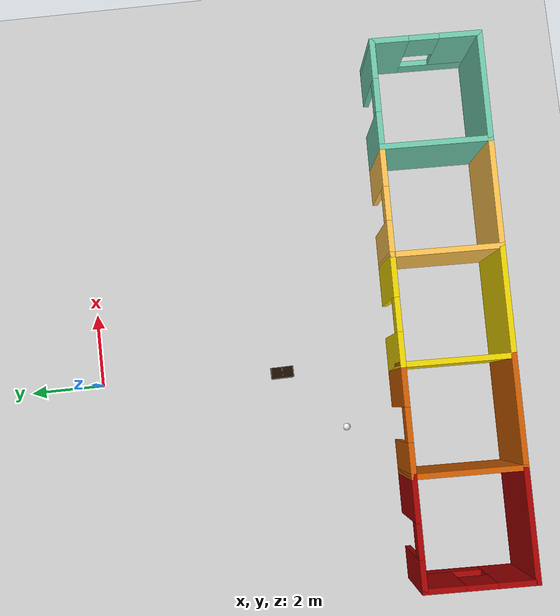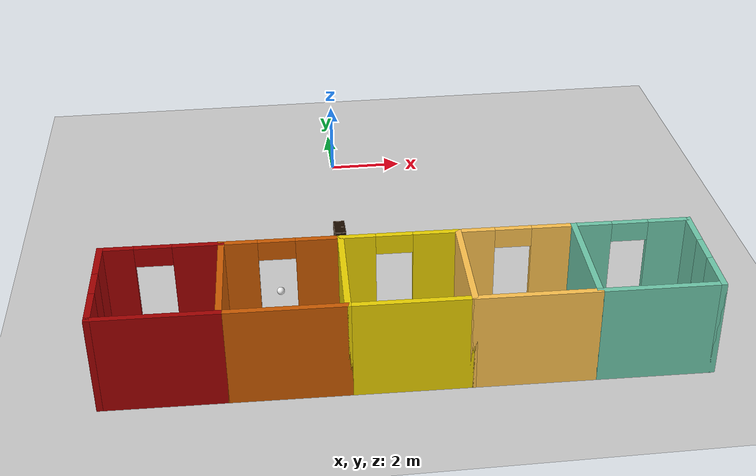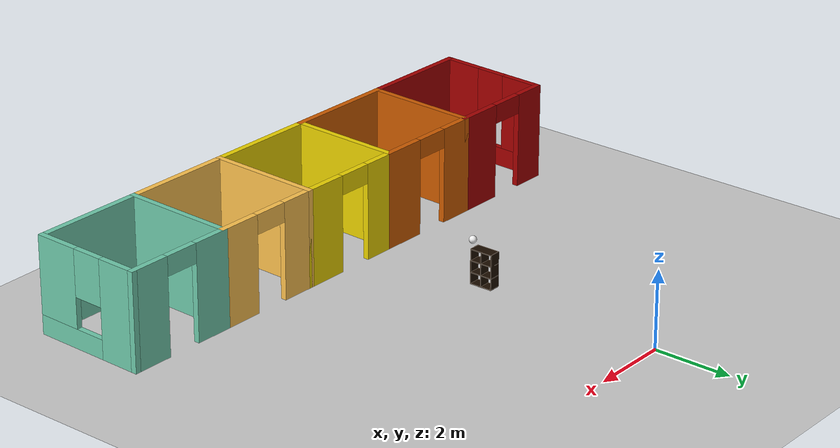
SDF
<sdf version="1.6">
 <world name="default">
  <model name="ground_plane">
   <static>1</static>
   <link name="link">
    <collision name="collision">
     <geometry><plane><normal>0 0 1</normal><size>100 100</size></plane></geometry>
     <surface><friction><ode><mu>100</mu><mu2>50</mu2></ode></friction></surface>
    </collision>
    <visual name="visual">
     <cast_shadows>0</cast_shadows>
     <geometry><plane><normal>0 0 1</normal><size>100 100</size></plane></geometry>
     <material>
      <script><uri>file://media/materials/scripts/gazebo.material</uri><name>Gazebo/Grey</name></script>
     </material>
    </visual>
   </link>
  </model>
  <model name="office_4_1">
   <pose>1.03568 -10.1309 0 0 -0 3.11919</pose>
   <link name="Wall_0">
    <collision name="Wall_0_Collision">
     <geometry><box><size>3 0.15 2.5</size></box></geometry>
     <pose>0 0 1.25 0 -0 0</pose>
    </collision>
    <visual name="Wall_0_Visual">
     <pose>0 0 1.25 0 -0 0</pose>
     <geometry><box><size>3 0.15 2.5</size></box></geometry>
     <material>
      <script><uri>file://media/materials/scripts/gazebo.material</uri><name>Gazebo/Grey</name></script>
      <ambient>0.435294 0.796078 0.67451 1</ambient>
     </material>
     <meta><layer>0</layer></meta>
    </visual>
    <pose>-5.7 0.8025 0 0 -0 0</pose>
   </link>
   <link name="Wall_1">
    <collision name="Wall_1_Collision">
     <geometry><box><size>3 0.15 2.5</size></box></geometry>
     <pose>0 0 1.25 0 -0 0</pose>
    </collision>
    <visual name="Wall_1_Visual">
     <pose>0 0 1.25 0 -0 0</pose>
     <geometry><box><size>3 0.15 2.5</size></box></geometry>
     <material>
      <script><uri>file://media/materials/scripts/gazebo.material</uri><name>Gazebo/Grey</name></script>
      <ambient>0.435294 0.796078 0.67451 1</ambient>
     </material>
     <meta><layer>0</layer></meta>
    </visual>
    <pose>-4.275 -0.6225 0 0 -0 -1.5708</pose>
   </link>
   <link name="Wall_10">
    <pose>5.7 -2.0475 0 0 -0 3.14159</pose>
    <visual name="Wall_10_Visual_0">
     <pose>-1.06469 0 1.25 0 -0 0</pose>
     <geometry><box><size>0.870623 0.15 2.5</size></box></geometry>
     <material>
      <script><uri>file://media/materials/scripts/gazebo.material</uri><name>Gazebo/Grey</name></script>
      <ambient>0.643137 0 0 1</ambient>
     </material>
     <meta><layer>0</layer></meta>
    </visual>
    <collision name="Wall_10_Collision_0">
     <geometry><box><size>0.870623 0.15 2.5</size></box></geometry>
     <pose>-1.06469 0 1.25 0 -0 0</pose>
    </collision>
    <visual name="Wall_10_Visual_1">
     <pose>0.885312 0 1.25 0 -0 0</pose>
     <geometry><box><size>1.22938 0.15 2.5</size></box></geometry>
     <material>
      <script><uri>file://media/materials/scripts/gazebo.material</uri><name>Gazebo/Grey</name></script>
      <ambient>0.643137 0 0 1</ambient>
     </material>
     <meta><layer>0</layer></meta>
    </visual>
    <collision name="Wall_10_Collision_1">
     <geometry><box><size>1.22938 0.15 2.5</size></box></geometry>
     <pose>0.885312 0 1.25 0 -0 0</pose>
    </collision>
    <visual name="Wall_10_Visual_2">
     <pose>-0.179377 0 2.25 0 -0 0</pose>
     <geometry><box><size>0.9 0.15 0.5</size></box></geometry>
     <material>
      <script><uri>file://media/materials/scripts/gazebo.material</uri><name>Gazebo/Grey</name></script>
      <ambient>0.643137 0 0 1</ambient>
     </material>
     <meta><layer>0</layer></meta>
    </visual>
    <collision name="Wall_10_Collision_2">
     <geometry><box><size>0.9 0.15 0.5</size></box></geometry>
     <pose>-0.179377 0 2.25 0 -0 0</pose>
    </collision>
   </link>
   <link name="Wall_12">
    <pose>0 -2.0475 0 0 -0 0</pose>
    <visual name="Wall_12_Visual_0">
     <pose>-0.909766 0 1.25 0 -0 0</pose>
     <geometry><box><size>1.18047 0.15 2.5</size></box></geometry>
     <material>
      <script><uri>file://media/materials/scripts/gazebo.material</uri><name>Gazebo/Grey</name></script>
      <ambient>0.929412 0.831373 0 1</ambient>
     </material>
     <meta><layer>0</layer></meta>
    </visual>
    <collision name="Wall_12_Collision_0">
     <geometry><box><size>1.18047 0.15 2.5</size></box></geometry>
     <pose>-0.909766 0 1.25 0 -0 0</pose>
    </collision>
    <visual name="Wall_12_Visual_1">
     <pose>1.04023 0 1.25 0 -0 0</pose>
     <geometry><box><size>0.919531 0.15 2.5</size></box></geometry>
     <material>
      <script><uri>file://media/materials/scripts/gazebo.material</uri><name>Gazebo/Grey</name></script>
      <ambient>0.929412 0.831373 0 1</ambient>
     </material>
     <meta><layer>0</layer></meta>
    </visual>
    <collision name="Wall_12_Collision_1">
     <geometry><box><size>0.919531 0.15 2.5</size></box></geometry>
     <pose>1.04023 0 1.25 0 -0 0</pose>
    </collision>
    <visual name="Wall_12_Visual_2">
     <pose>0.130469 0 2.25 0 -0 0</pose>
     <geometry><box><size>0.9 0.15 0.5</size></box></geometry>
     <material>
      <script><uri>file://media/materials/scripts/gazebo.material</uri><name>Gazebo/Grey</name></script>
      <ambient>0.929412 0.831373 0 1</ambient>
     </material>
     <meta><layer>0</layer></meta>
    </visual>
    <collision name="Wall_12_Collision_2">
     <geometry><box><size>0.9 0.15 0.5</size></box></geometry>
     <pose>0.130469 0 2.25 0 -0 0</pose>
    </collision>
   </link>
   <link name="Wall_14">
    <collision name="Wall_14_Collision">
     <geometry><box><size>3 0.15 2.5</size></box></geometry>
     <pose>0 0 1.25 0 -0 0</pose>
    </collision>
    <visual name="Wall_14_Visual">
     <pose>0 0 1.25 0 -0 0</pose>
     <geometry><box><size>3 0.15 2.5</size></box></geometry>
     <material>
      <script><uri>file://media/materials/scripts/gazebo.material</uri><name>Gazebo/Grey</name></script>
      <ambient>0.807843 0.360784 0 1</ambient>
     </material>
     <meta><layer>0</layer></meta>
    </visual>
    <pose>2.85 0.8025 0 0 -0 0</pose>
   </link>
   <link name="Wall_16">
    <collision name="Wall_16_Collision">
     <geometry><box><size>3 0.15 2.5</size></box></geometry>
     <pose>0 0 1.25 0 -0 0</pose>
    </collision>
    <visual name="Wall_16_Visual">
     <pose>0 0 1.25 0 -0 0</pose>
     <geometry><box><size>3 0.15 2.5</size></box></geometry>
     <material>
      <script><uri>file://media/materials/scripts/gazebo.material</uri><name>Gazebo/Grey</name></script>
      <ambient>1 0.764706 0.305882 1</ambient>
     </material>
     <meta><layer>0</layer></meta>
    </visual>
    <pose>-2.85 0.8025 0 0 -0 0</pose>
   </link>
   <link name="Wall_18">
    <pose>-5.7 -2.0475 0 0 -0 3.14159</pose>
    <visual name="Wall_18_Visual_0">
     <pose>-0.992968 0 1.25 0 -0 0</pose>
     <geometry><box><size>1.01406 0.15 2.5</size></box></geometry>
     <material>
      <script><uri>file://media/materials/scripts/gazebo.material</uri><name>Gazebo/Grey</name></script>
      <ambient>0.435294 0.796078 0.67451 1</ambient>
     </material>
     <meta><layer>0</layer></meta>
    </visual>
    <collision name="Wall_18_Collision_0">
     <geometry><box><size>1.01406 0.15 2.5</size></box></geometry>
     <pose>-0.992968 0 1.25 0 -0 0</pose>
    </collision>
    <visual name="Wall_18_Visual_1">
     <pose>0.957032 0 1.25 0 -0 0</pose>
     <geometry><box><size>1.08594 0.15 2.5</size></box></geometry>
     <material>
      <script><uri>file://media/materials/scripts/gazebo.material</uri><name>Gazebo/Grey</name></script>
      <ambient>0.435294 0.796078 0.67451 1</ambient>
     </material>
     <meta><layer>0</layer></meta>
    </visual>
    <collision name="Wall_18_Collision_1">
     <geometry><box><size>1.08594 0.15 2.5</size></box></geometry>
     <pose>0.957032 0 1.25 0 -0 0</pose>
    </collision>
    <visual name="Wall_18_Visual_2">
     <pose>-0.035935 0 2.25 0 -0 0</pose>
     <geometry><box><size>0.9 0.15 0.5</size></box></geometry>
     <material>
      <script><uri>file://media/materials/scripts/gazebo.material</uri><name>Gazebo/Grey</name></script>
      <ambient>0.435294 0.796078 0.67451 1</ambient>
     </material>
     <meta><layer>0</layer></meta>
    </visual>
    <collision name="Wall_18_Collision_2">
     <geometry><box><size>0.9 0.15 0.5</size></box></geometry>
     <pose>-0.035935 0 2.25 0 -0 0</pose>
    </collision>
   </link>
   <link name="Wall_19">
    <pose>-7.125 -0.6225 0 0 -0 1.5708</pose>
    <visual name="Wall_19_Visual_0">
     <pose>-0.974081 0 1.25 0 -0 0</pose>
     <geometry><box><size>1.05184 0.15 2.5</size></box></geometry>
     <material>
      <script><uri>file://media/materials/scripts/gazebo.material</uri><name>Gazebo/Grey</name></script>
      <ambient>0.435294 0.796078 0.67451 1</ambient>
     </material>
     <meta><layer>0</layer></meta>
    </visual>
    <collision name="Wall_19_Collision_0">
     <geometry><box><size>1.05184 0.15 2.5</size></box></geometry>
     <pose>-0.974081 0 1.25 0 -0 0</pose>
    </collision>
    <visual name="Wall_19_Visual_1">
     <pose>0.525919 0 0.25 0 -0 0</pose>
     <geometry><box><size>1.94816 0.15 0.5</size></box></geometry>
     <material>
      <script><uri>file://media/materials/scripts/gazebo.material</uri><name>Gazebo/Grey</name></script>
      <ambient>0.435294 0.796078 0.67451 1</ambient>
     </material>
     <meta><layer>0</layer></meta>
    </visual>
    <collision name="Wall_19_Collision_1">
     <geometry><box><size>1.94816 0.15 0.5</size></box></geometry>
     <pose>0.525919 0 0.25 0 -0 0</pose>
    </collision>
    <visual name="Wall_19_Visual_2">
     <pose>0.925919 0 1.5 0 -0 0</pose>
     <geometry><box><size>1.14816 0.15 2</size></box></geometry>
     <material>
      <script><uri>file://media/materials/scripts/gazebo.material</uri><name>Gazebo/Grey</name></script>
      <ambient>0.435294 0.796078 0.67451 1</ambient>
     </material>
     <meta><layer>0</layer></meta>
    </visual>
    <collision name="Wall_19_Collision_2">
     <geometry><box><size>1.14816 0.15 2</size></box></geometry>
     <pose>0.925919 0 1.5 0 -0 0</pose>
    </collision>
    <visual name="Wall_19_Visual_3">
     <pose>-0.048161 0 1.9 0 -0 0</pose>
     <geometry><box><size>0.8 0.15 1.2</size></box></geometry>
     <material>
      <script><uri>file://media/materials/scripts/gazebo.material</uri><name>Gazebo/Grey</name></script>
      <ambient>0.435294 0.796078 0.67451 1</ambient>
     </material>
     <meta><layer>0</layer></meta>
    </visual>
    <collision name="Wall_19_Collision_3">
     <geometry><box><size>0.8 0.15 1.2</size></box></geometry>
     <pose>-0.048161 0 1.9 0 -0 0</pose>
    </collision>
   </link>
   <link name="Wall_2">
    <pose>-2.85 -2.0475 0 0 -0 0</pose>
    <visual name="Wall_2_Visual_0">
     <pose>-0.937201 0 1.25 0 -0 0</pose>
     <geometry><box><size>1.1256 0.15 2.5</size></box></geometry>
     <material>
      <script><uri>file://media/materials/scripts/gazebo.material</uri><name>Gazebo/Grey</name></script>
      <ambient>1 0.764706 0.305882 1</ambient>
     </material>
     <meta><layer>0</layer></meta>
    </visual>
    <collision name="Wall_2_Collision_0">
     <geometry><box><size>1.1256 0.15 2.5</size></box></geometry>
     <pose>-0.937201 0 1.25 0 -0 0</pose>
    </collision>
    <visual name="Wall_2_Visual_1">
     <pose>1.0128 0 1.25 0 -0 0</pose>
     <geometry><box><size>0.974402 0.15 2.5</size></box></geometry>
     <material>
      <script><uri>file://media/materials/scripts/gazebo.material</uri><name>Gazebo/Grey</name></script>
      <ambient>1 0.764706 0.305882 1</ambient>
     </material>
     <meta><layer>0</layer></meta>
    </visual>
    <collision name="Wall_2_Collision_1">
     <geometry><box><size>0.974402 0.15 2.5</size></box></geometry>
     <pose>1.0128 0 1.25 0 -0 0</pose>
    </collision>
    <visual name="Wall_2_Visual_2">
     <pose>0.075598 0 2.25 0 -0 0</pose>
     <geometry><box><size>0.9 0.15 0.5</size></box></geometry>
     <material>
      <script><uri>file://media/materials/scripts/gazebo.material</uri><name>Gazebo/Grey</name></script>
      <ambient>1 0.764706 0.305882 1</ambient>
     </material>
     <meta><layer>0</layer></meta>
    </visual>
    <collision name="Wall_2_Collision_2">
     <geometry><box><size>0.9 0.15 0.5</size></box></geometry>
     <pose>0.075598 0 2.25 0 -0 0</pose>
    </collision>
   </link>
   <link name="Wall_3">
    <collision name="Wall_3_Collision">
     <geometry><box><size>3 0.15 2.5</size></box></geometry>
     <pose>0 0 1.25 0 -0 0</pose>
    </collision>
    <visual name="Wall_3_Visual">
     <pose>0 0 1.25 0 -0 0</pose>
     <geometry><box><size>3 0.15 2.5</size></box></geometry>
     <material>
      <script><uri>file://media/materials/scripts/gazebo.material</uri><name>Gazebo/Grey</name></script>
      <ambient>1 0.764706 0.305882 1</ambient>
     </material>
     <meta><layer>0</layer></meta>
    </visual>
    <pose>-1.425 -0.6225 0 0 -0 1.5708</pose>
   </link>
   <link name="Wall_4">
    <collision name="Wall_4_Collision">
     <geometry><box><size>3 0.15 2.5</size></box></geometry>
     <pose>0 0 1.25 0 -0 0</pose>
    </collision>
    <visual name="Wall_4_Visual">
     <pose>0 0 1.25 0 -0 0</pose>
     <geometry><box><size>3 0.15 2.5</size></box></geometry>
     <material>
      <script><uri>file://media/materials/scripts/gazebo.material</uri><name>Gazebo/Grey</name></script>
      <ambient>0.929412 0.831373 0 1</ambient>
     </material>
     <meta><layer>0</layer></meta>
    </visual>
    <pose>0 0.8025 0 0 -0 0</pose>
   </link>
   <link name="Wall_5">
    <collision name="Wall_5_Collision">
     <geometry><box><size>3 0.15 2.5</size></box></geometry>
     <pose>0 0 1.25 0 -0 0</pose>
    </collision>
    <visual name="Wall_5_Visual">
     <pose>0 0 1.25 0 -0 0</pose>
     <geometry><box><size>3 0.15 2.5</size></box></geometry>
     <material>
      <script><uri>file://media/materials/scripts/gazebo.material</uri><name>Gazebo/Grey</name></script>
      <ambient>0.929412 0.831373 0 1</ambient>
     </material>
     <meta><layer>0</layer></meta>
    </visual>
    <pose>1.425 -0.6225 0 0 -0 -1.5708</pose>
   </link>
   <link name="Wall_6">
    <pose>2.85 -2.0475 0 0 -0 0</pose>
    <visual name="Wall_6_Visual_0">
     <pose>-0.920352 0 1.25 0 -0 0</pose>
     <geometry><box><size>1.1593 0.15 2.5</size></box></geometry>
     <material>
      <script><uri>file://media/materials/scripts/gazebo.material</uri><name>Gazebo/Grey</name></script>
      <ambient>0.807843 0.360784 0 1</ambient>
     </material>
     <meta><layer>0</layer></meta>
    </visual>
    <collision name="Wall_6_Collision_0">
     <geometry><box><size>1.1593 0.15 2.5</size></box></geometry>
     <pose>-0.920352 0 1.25 0 -0 0</pose>
    </collision>
    <visual name="Wall_6_Visual_1">
     <pose>1.02965 0 1.25 0 -0 0</pose>
     <geometry><box><size>0.940704 0.15 2.5</size></box></geometry>
     <material>
      <script><uri>file://media/materials/scripts/gazebo.material</uri><name>Gazebo/Grey</name></script>
      <ambient>0.807843 0.360784 0 1</ambient>
     </material>
     <meta><layer>0</layer></meta>
    </visual>
    <collision name="Wall_6_Collision_1">
     <geometry><box><size>0.940704 0.15 2.5</size></box></geometry>
     <pose>1.02965 0 1.25 0 -0 0</pose>
    </collision>
    <visual name="Wall_6_Visual_2">
     <pose>0.109296 0 2.25 0 -0 0</pose>
     <geometry><box><size>0.9 0.15 0.5</size></box></geometry>
     <material>
      <script><uri>file://media/materials/scripts/gazebo.material</uri><name>Gazebo/Grey</name></script>
      <ambient>0.807843 0.360784 0 1</ambient>
     </material>
     <meta><layer>0</layer></meta>
    </visual>
    <collision name="Wall_6_Collision_2">
     <geometry><box><size>0.9 0.15 0.5</size></box></geometry>
     <pose>0.109296 0 2.25 0 -0 0</pose>
    </collision>
   </link>
   <link name="Wall_7">
    <collision name="Wall_7_Collision">
     <geometry><box><size>3 0.15 2.5</size></box></geometry>
     <pose>0 0 1.25 0 -0 0</pose>
    </collision>
    <visual name="Wall_7_Visual">
     <pose>0 0 1.25 0 -0 0</pose>
     <geometry><box><size>3 0.15 2.5</size></box></geometry>
     <material>
      <script><uri>file://media/materials/scripts/gazebo.material</uri><name>Gazebo/Grey</name></script>
      <ambient>0.807843 0.360784 0 1</ambient>
     </material>
     <meta><layer>0</layer></meta>
    </visual>
    <pose>4.275 -0.6225 0 0 -0 1.5708</pose>
   </link>
   <link name="Wall_8">
    <collision name="Wall_8_Collision">
     <geometry><box><size>3 0.15 2.5</size></box></geometry>
     <pose>0 0 1.25 0 -0 0</pose>
    </collision>
    <visual name="Wall_8_Visual">
     <pose>0 0 1.25 0 -0 0</pose>
     <geometry><box><size>3 0.15 2.5</size></box></geometry>
     <material>
      <script><uri>file://media/materials/scripts/gazebo.material</uri><name>Gazebo/Grey</name></script>
      <ambient>0.643137 0 0 1</ambient>
     </material>
     <meta><layer>0</layer></meta>
    </visual>
    <pose>5.7 0.8025 0 0 -0 0</pose>
   </link>
   <link name="Wall_9">
    <pose>7.125 -0.6225 0 0 -0 -1.5708</pose>
    <visual name="Wall_9_Visual_0">
     <pose>-0.956337 0 1.25 0 -0 0</pose>
     <geometry><box><size>1.08733 0.15 2.5</size></box></geometry>
     <material>
      <script><uri>file://media/materials/scripts/gazebo.material</uri><name>Gazebo/Grey</name></script>
      <ambient>0.643137 0 0 1</ambient>
     </material>
     <meta><layer>0</layer></meta>
    </visual>
    <collision name="Wall_9_Collision_0">
     <geometry><box><size>1.08733 0.15 2.5</size></box></geometry>
     <pose>-0.956337 0 1.25 0 -0 0</pose>
    </collision>
    <visual name="Wall_9_Visual_1">
     <pose>0.543663 0 0.25 0 -0 0</pose>
     <geometry><box><size>1.91267 0.15 0.5</size></box></geometry>
     <material>
      <script><uri>file://media/materials/scripts/gazebo.material</uri><name>Gazebo/Grey</name></script>
      <ambient>0.643137 0 0 1</ambient>
     </material>
     <meta><layer>0</layer></meta>
    </visual>
    <collision name="Wall_9_Collision_1">
     <geometry><box><size>1.91267 0.15 0.5</size></box></geometry>
     <pose>0.543663 0 0.25 0 -0 0</pose>
    </collision>
    <visual name="Wall_9_Visual_2">
     <pose>0.943663 0 1.5 0 -0 0</pose>
     <geometry><box><size>1.11267 0.15 2</size></box></geometry>
     <material>
      <script><uri>file://media/materials/scripts/gazebo.material</uri><name>Gazebo/Grey</name></script>
      <ambient>0.643137 0 0 1</ambient>
     </material>
     <meta><layer>0</layer></meta>
    </visual>
    <collision name="Wall_9_Collision_2">
     <geometry><box><size>1.11267 0.15 2</size></box></geometry>
     <pose>0.943663 0 1.5 0 -0 0</pose>
    </collision>
    <visual name="Wall_9_Visual_3">
     <pose>-0.012674 0 1.9 0 -0 0</pose>
     <geometry><box><size>0.8 0.15 1.2</size></box></geometry>
     <material>
      <script><uri>file://media/materials/scripts/gazebo.material</uri><name>Gazebo/Grey</name></script>
      <ambient>0.643137 0 0 1</ambient>
     </material>
     <meta><layer>0</layer></meta>
    </visual>
    <collision name="Wall_9_Collision_3">
     <geometry><box><size>0.8 0.15 1.2</size></box></geometry>
     <pose>-0.012674 0 1.9 0 -0 0</pose>
    </collision>
   </link>
   <static>1</static>
  </model>
  <model name="6_Cube_StorageE">
   <link name="Wall_0">
    <pose>0 0 0.01 0 -0 0</pose>
    <inertial>
     <mass>1.6201</mass>
     <inertia><ixx>0.0119</ixx><iyy>0.0631</iyy><izz>0.0513</izz><ixy>0</ixy><ixz>0</ixz><iyz>0</iyz></inertia>
    </inertial>
    <collision name="Wall_0_Collision"><geometry><box><size>0.616 0.296 0.02</size></box></geometry></collision>
    <visual name="Wall_0_Visual">
     <geometry><box><size>0.616 0.296 0.02</size></box></geometry>
     <material>
      <script><uri>file://media/materials/scripts/gazebo.material</uri><name>Gazebo/Grey</name></script>
      <ambient>0.105882 0.0509804 0 1</ambient>
     </material>
    </visual>
   </link>
   <joint name="0_2" type="fixed">
    <pose>-0.308 0 0 0 -0 0</pose>
    <parent>Wall_2</parent>
    <child>Wall_0</child>
    <axis>
     <xyz>1 0 0</xyz>
     <limit><lower>-1e+16</lower><upper>1e+16</upper></limit>
     <use_parent_model_frame>0</use_parent_model_frame>
    </axis>
   </joint>
   <joint name="0_12" type="fixed">
    <parent>Wall_12</parent>
    <child>Wall_0</child>
    <axis>
     <xyz>0 0 1</xyz>
     <limit><lower>-1e+16</lower><upper>1e+16</upper></limit>
     <use_parent_model_frame>0</use_parent_model_frame>
    </axis>
   </joint>
   <joint name="0_4" type="fixed">
    <pose>0.308 0 0 0 -0 0</pose>
    <parent>Wall_4</parent>
    <child>Wall_0</child>
    <axis>
     <xyz>1 0 0</xyz>
     <limit><lower>-1e+16</lower><upper>1e+16</upper></limit>
     <use_parent_model_frame>0</use_parent_model_frame>
    </axis>
   </joint>
   <link name="Wall_10">
    <pose>0 0 0.61 0 -0 0</pose>
    <inertial>
     <mass>1.6201</mass>
     <inertia><ixx>0.0119</ixx><iyy>0.0631</iyy><izz>0.0513</izz><ixy>0</ixy><ixz>0</ixz><iyz>0</iyz></inertia>
    </inertial>
    <collision name="Wall_10_Collision"><geometry><box><size>0.616 0.296 0.02</size></box></geometry></collision>
    <visual name="Wall_10_Visual">
     <geometry><box><size>0.616 0.296 0.02</size></box></geometry>
     <material>
      <script><uri>file://media/materials/scripts/gazebo.material</uri><name>Gazebo/Grey</name></script>
      <ambient>0.105882 0.0509804 0 1</ambient>
     </material>
    </visual>
   </link>
   <joint name="10_2" type="fixed">
    <pose>-0.308 0 0 0 -0 0</pose>
    <parent>Wall_2</parent>
    <child>Wall_10</child>
    <axis>
     <xyz>1 0 0</xyz>
     <limit><lower>-1e+16</lower><upper>1e+16</upper></limit>
     <use_parent_model_frame>0</use_parent_model_frame>
    </axis>
   </joint>
   <joint name="10_12" type="fixed">
    <parent>Wall_12</parent>
    <child>Wall_10</child>
    <axis>
     <xyz>0 0 1</xyz>
     <limit><lower>-1e+16</lower><upper>1e+16</upper></limit>
     <use_parent_model_frame>0</use_parent_model_frame>
    </axis>
   </joint>
   <joint name="10_4" type="fixed">
    <pose>0.308 0 0 0 -0 0</pose>
    <parent>Wall_4</parent>
    <child>Wall_10</child>
    <axis>
     <xyz>1 0 0</xyz>
     <limit><lower>-1e+16</lower><upper>1e+16</upper></limit>
     <use_parent_model_frame>0</use_parent_model_frame>
    </axis>
   </joint>
   <link name="Wall_12">
    <pose>0 0 0.4575 0 -0 0</pose>
    <inertial>
     <mass>2.4065</mass>
     <inertia><ixx>0.0177</ixx><iyy>0.1855</iyy><izz>0.168</izz><ixy>0</ixy><ixz>0</ixz><iyz>0</iyz></inertia>
    </inertial>
    <collision name="Wall_12_Collision"><geometry><box><size>0.02 0.296 0.915</size></box></geometry></collision>
    <visual name="Wall_12_Visual">
     <geometry><box><size>0.02 0.296 0.915</size></box></geometry>
     <material>
      <script><uri>file://media/materials/scripts/gazebo.material</uri><name>Gazebo/Grey</name></script>
      <ambient>0.105882 0.0509804 0 1</ambient>
     </material>
    </visual>
   </link>
   <link name="Wall_2">
    <pose>-0.298 0 0.4575 0 -0 0</pose>
    <inertial>
     <mass>2.4065</mass>
     <inertia><ixx>0.0177</ixx><iyy>0.1855</iyy><izz>0.168</izz><ixy>0</ixy><ixz>0</ixz><iyz>0</iyz></inertia>
    </inertial>
    <collision name="Wall_2_Collision"><geometry><box><size>0.02 0.296 0.915</size></box></geometry></collision>
    <visual name="Wall_2_Visual">
     <geometry><box><size>0.02 0.296 0.915</size></box></geometry>
     <material>
      <script><uri>file://media/materials/scripts/gazebo.material</uri><name>Gazebo/Grey</name></script>
      <ambient>0.105882 0.0509804 0 1</ambient>
     </material>
    </visual>
   </link>
   <link name="Wall_4">
    <pose>0.298 0 0.4575 0 -0 0</pose>
    <inertial>
     <mass>2.4065</mass>
     <inertia><ixx>0.0177</ixx><iyy>0.1855</iyy><izz>0.168</izz><ixy>0</ixy><ixz>0</ixz><iyz>0</iyz></inertia>
    </inertial>
    <collision name="Wall_4_Collision"><geometry><box><size>0.02 0.296 0.915</size></box></geometry></collision>
    <visual name="Wall_4_Visual">
     <geometry><box><size>0.02 0.296 0.915</size></box></geometry>
     <material>
      <script><uri>file://media/materials/scripts/gazebo.material</uri><name>Gazebo/Grey</name></script>
      <ambient>0.105882 0.0509804 0 1</ambient>
     </material>
    </visual>
   </link>
   <link name="Wall_6">
    <pose>0 0 0.905 0 -0 0</pose>
    <inertial>
     <mass>1.6201</mass>
     <inertia><ixx>0.0119</ixx><iyy>0.0631</iyy><izz>0.0513</izz><ixy>0</ixy><ixz>0</ixz><iyz>0</iyz></inertia>
    </inertial>
    <collision name="Wall_6_Collision"><geometry><box><size>0.616 0.296 0.02</size></box></geometry></collision>
    <visual name="Wall_6_Visual">
     <geometry><box><size>0.616 0.296 0.02</size></box></geometry>
     <material>
      <script><uri>file://media/materials/scripts/gazebo.material</uri><name>Gazebo/Grey</name></script>
      <ambient>0.105882 0.0509804 0 1</ambient>
     </material>
    </visual>
   </link>
   <joint name="6_2" type="fixed">
    <pose>-0.308 0 0 0 -0 0</pose>
    <parent>Wall_2</parent>
    <child>Wall_6</child>
    <axis>
     <xyz>2 0 0</xyz>
     <limit><lower>-1e+16</lower><upper>1e+16</upper></limit>
     <use_parent_model_frame>0</use_parent_model_frame>
    </axis>
   </joint>
   <joint name="6_12" type="fixed">
    <parent>Wall_12</parent>
    <child>Wall_6</child>
    <axis>
     <xyz>0 0 1</xyz>
     <limit><lower>-1e+16</lower><upper>1e+16</upper></limit>
     <use_parent_model_frame>0</use_parent_model_frame>
    </axis>
   </joint>
   <joint name="6_4" type="fixed">
    <pose>0.308 0 0 0 -0 0</pose>
    <parent>Wall_4</parent>
    <child>Wall_6</child>
    <axis>
     <xyz>1 0 0</xyz>
     <limit><lower>-1e+16</lower><upper>1e+16</upper></limit>
     <use_parent_model_frame>0</use_parent_model_frame>
    </axis>
   </joint>
   <link name="Wall_8">
    <pose>0 0 0.305 0 -0 0</pose>
    <inertial>
     <mass>1.6201</mass>
     <inertia><ixx>0.0119</ixx><iyy>0.0631</iyy><izz>0.0513</izz><ixy>0</ixy><ixz>0</ixz><iyz>0</iyz></inertia>
    </inertial>
    <collision name="Wall_8_Collision"><geometry><box><size>0.616 0.296 0.02</size></box></geometry></collision>
    <visual name="Wall_8_Visual">
     <geometry><box><size>0.616 0.296 0.02</size></box></geometry>
     <material>
      <script><uri>file://media/materials/scripts/gazebo.material</uri><name>Gazebo/Grey</name></script>
      <ambient>0.105882 0.0509804 0 1</ambient>
     </material>
    </visual>
   </link>
   <joint name="8_2" type="fixed">
    <pose>-0.308 0 0 0 -0 0</pose>
    <parent>Wall_2</parent>
    <child>Wall_8</child>
    <axis>
     <xyz>1 0 0</xyz>
     <limit><lower>-1e+16</lower><upper>1e+16</upper></limit>
     <use_parent_model_frame>0</use_parent_model_frame>
    </axis>
   </joint>
   <joint name="8_12" type="fixed">
    <parent>Wall_12</parent>
    <child>Wall_8</child>
    <axis>
     <xyz>0 0 1</xyz>
     <limit><lower>-1e+16</lower><upper>1e+16</upper></limit>
     <use_parent_model_frame>0</use_parent_model_frame>
    </axis>
   </joint>
   <joint name="8_4" type="fixed">
    <pose>0.308 0 0 0 -0 0</pose>
    <parent>Wall_4</parent>
    <child>Wall_8</child>
    <axis>
     <xyz>1 0 0</xyz>
     <limit><lower>-1e+16</lower><upper>1e+16</upper></limit>
     <use_parent_model_frame>0</use_parent_model_frame>
    </axis>
   </joint>
   <static>1</static>
   <pose>-0.162763 -4.98984 0 0 0 -1.55866</pose>
  </model>
  <model name="my_ball">
   <link name="link_0">
    <inertial>
     <mass>1</mass>
     <inertia><ixx>0.1</ixx><ixy>0</ixy><ixz>0</ixz><iyy>0.1</iyy><iyz>0</iyz><izz>0.1</izz></inertia>
    </inertial>
    <visual name="visual">
     <geometry><sphere><radius>0.1</radius></sphere></geometry>
     <material>
      <lighting>1</lighting>
      <script><uri>file://media/materials/scripts/gazebo.material</uri><name>Gazebo/White</name></script>
      <ambient>1 1 1 1</ambient>
      <diffuse>1 1 1 1</diffuse>
      <specular>1 1 1 1</specular>
      <emissive>1 1 1 1</emissive>
      <shader type="vertex"><normal_map>__default__</normal_map></shader>
     </material>
    </visual>
    <collision name="collision">
     <geometry><sphere><radius>0.1</radius></sphere></geometry>
     <surface>
      <friction>
       <ode><mu>1</mu><mu2>1</mu2><fdir1>0 0 0</fdir1><slip1>0</slip1><slip2>0</slip2></ode>
       <torsional>
        <coefficient>1</coefficient>
        <patch_radius>0</patch_radius>
        <surface_radius>0</surface_radius>
        <use_patch_radius>1</use_patch_radius>
        <ode><slip>0</slip></ode>
       </torsional>
      </friction>
      <bounce><restitution_coefficient>0</restitution_coefficient><threshold>1e+06</threshold></bounce>
      <contact>
       <collide_without_contact>0</collide_without_contact>
       <collide_without_contact_bitmask>1</collide_without_contact_bitmask>
       <collide_bitmask>1</collide_bitmask>
       <ode>
        <soft_cfm>0</soft_cfm>
        <soft_erp>0.2</soft_erp>
        <kp>1e+13</kp>
        <kd>1</kd>
        <max_vel>0.01</max_vel>
        <min_depth>0</min_depth>
       </ode>
       <bullet>
        <split_impulse>1</split_impulse>
        <split_impulse_penetration_threshold>-0.01</split_impulse_penetration_threshold>
        <soft_cfm>0</soft_cfm>
        <soft_erp>0.2</soft_erp>
        <kp>1e+13</kp>
        <kd>1</kd>
       </bullet>
      </contact>
     </surface>
    </collision>
   </link>
   <static>0</static>
   <pose>-1.83242 -6.63154 0.1 0 -0 0</pose>
  </model>
 </world>
</sdf>
